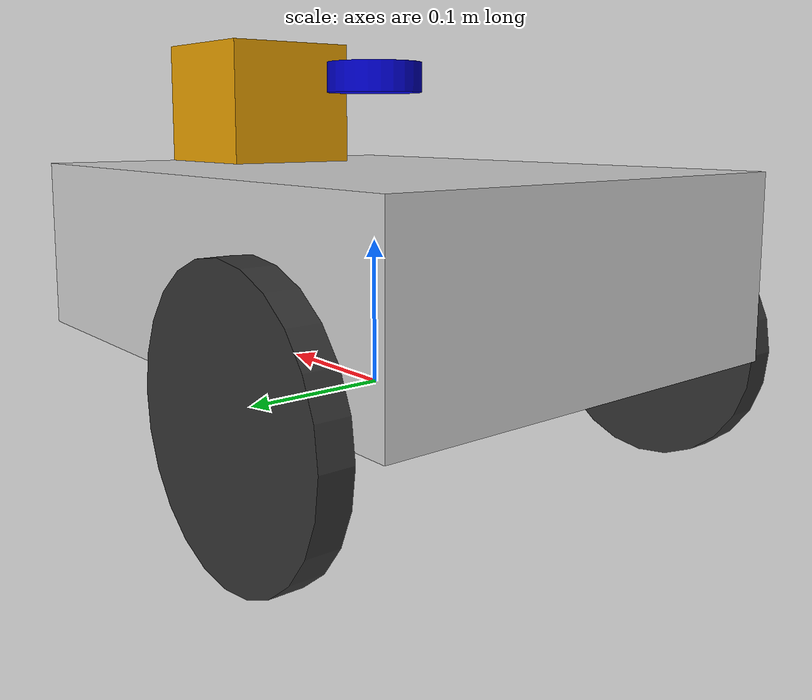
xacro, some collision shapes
<?xml version="1.0"?>
<robot xmlns:xacro="http://www.ros.org/wiki/xacro" name="rb_diff_wheel">

  <xacro:property name="base_width" value="0.3"/>
  <xacro:property name="base_len" value="0.4"/>
  <xacro:property name="base_height" value="0.12"/>
  <xacro:property name="wheel_radius" value="0.085"/>
  <xacro:property name="base_wheel_gap" value="0.02"/>
  <xacro:property name="wheel_separation" value="0.31"/>
  <xacro:property name="wheel_joint_offset" value="-0.107"/>
  <xacro:property name="caster_wheel_radius" value="0.05"/>
  <xacro:property name="caster_wheel_joint_offset" value="0.12"/>

  <!-- type proper dae file location for your robot -->
  <xacro:property name="lidar_dae_location" value="package://gcamp_gazebo/meshes/hokuyo.dae"/>

  <link name="robot_footprint"></link>
  <xacro:include filename="$(find gcamp_gazebo)/urdf/rb_diff_gazebo_plugin.xacro"/>

  <material name="blue">
    <color rgba="0 0 0.8 1"/>
  </material>
  <material name="black">
    <color rgba="0 0 0 1"/>
  </material>
  <material name="darkgray">
    <color rgba="0.2 0.2 0.2 1"/>
  </material>
  <material name="lightgray">
    <color rgba="0.8 0.8 0.8 1"/>s
  </material>
  <material name="white">
    <color rgba="1 1 1 1"/>
  </material>
  <material name="red">
    <color rgba="0.8 0.0 0.0 1.0"/>
  </material>

  <!-- Import Rviz colors -->

  <xacro:macro name="box_inertia" params="m w h d">
    <inertial>
      <mass value="${m}"/>
      <inertia ixx="${m / 12.0 * (d*d + h*h)}" ixy="0.0" ixz="0.0" iyy="${m / 12.0 * (w*w + h*h)}" iyz="0.0" izz="${m / 12.0 * (w*w + d*d)}"/>
    </inertial>
  </xacro:macro>

  <joint name="robot_footprint_joint" type="fixed">
    <origin xyz="0 0 0" rpy="0 0 0" />
    <parent link="robot_footprint"/>
    <child link="base_footprint"/>
  </joint>

  <link name="base_footprint">
    <xacro:box_inertia m="8" w="0.001" h="0.001" d="0.001"/>
    <visual>
      <origin xyz="0 0 0" rpy="0 0 0" />
      <material name="white"/>
        <geometry>
            <box size="0.001 0.001 0.001" />
        </geometry>
    </visual>
  </link>

  <link name="base_link">
    <xacro:box_inertia m="1" w="${base_len}" h="${base_width}" d="0.01"/>
    <visual>
      <material name="lightgray"/>
      <geometry>
        <box size="${base_len} ${base_width} ${base_height}"/>
      </geometry>
    </visual>
    <collision>
      <geometry>
        <box size="${base_len} ${base_width} ${base_height}"/>
      </geometry>
    </collision>
  </link>

  <joint name="base_link_joint" type="fixed">
    <origin xyz="0 0 ${wheel_radius + 0.005}" rpy="0 0 0" />
    <parent link="base_footprint"/>
    <child link="base_link" />
  </joint>

  <xacro:macro name="cylinder_inertia" params="m r h">
    <inertial>
      <mass value="${m}"/>
      <inertia ixx="${m*(3*r*r+h*h)/12}" ixy = "0" ixz = "0" iyy="${m*(3*r*r+h*h)/12}" iyz = "0" izz="${m*r*r/2}"/>
    </inertial>
  </xacro:macro>

  <xacro:macro name="wheel" params="prefix reflect">
    <link name="${prefix}_wheel">
      <visual>
	      <material name="darkgray"/>
        <origin xyz="0 0 0" rpy="${pi/2} 0 0"/>
        <geometry>
          <cylinder radius="${wheel_radius}" length="0.02"/>
        </geometry>
      </visual>
      <collision>
        <origin xyz="0 0 0" rpy="${pi/2} 0 0"/>
        <geometry>
          <cylinder radius="${wheel_radius}" length="0.02"/>
        </geometry>
      </collision>
      <xacro:cylinder_inertia m="10" r="${wheel_radius}" h="0.02"/>
    </link>

    <joint name="${prefix}_wheel" type="continuous">
      <axis xyz="0 1 0" rpy="0 0 0" />
      <parent link="base_link"/>
      <child link="${prefix}_wheel"/>
      <origin xyz="${wheel_joint_offset} ${((base_width/2)+base_wheel_gap)*reflect} -0.06" rpy="0 0 0"/>
    </joint>
  </xacro:macro>

  <xacro:wheel prefix="left" reflect="1"/>
  <xacro:wheel prefix="right" reflect="-1"/>

  <xacro:macro name="sphere_inertia" params="m r">
    <inertial>
      <mass value="${m}"/>
      <inertia ixx="${2.0*m*(r*r)/5.0}" ixy="0.0" ixz="0.0" iyy="${2.0*m*(r*r)/5.0}" iyz="0.0" izz="${2.0*m*(r*r)/5.0}"/>
    </inertial>
  </xacro:macro>

   <link name="caster_wheel">
     <visual>
      <material name="darkgray"/>
      <origin xyz="0 0 0" rpy="0 0 0"/>
      <geometry>
        <sphere radius="${caster_wheel_radius}"/>
      </geometry>
    </visual>
    <collision>
      <origin xyz="0 0 0" rpy="0 0 0"/>
      <geometry>
        <sphere radius="${caster_wheel_radius}"/>
      </geometry>
    </collision>
    <xacro:sphere_inertia m="5" r="${caster_wheel_radius}"/>
  </link>

  <joint name="caster_wheel_joint" type="continuous">
    <axis xyz="0 1 0" rpy="0 0 0" />
    <parent link="base_link"/>
    <child link="caster_wheel"/>
    <origin xyz="${caster_wheel_joint_offset} 0 -${0.045+caster_wheel_radius}" rpy="0 0 0"/>
  </joint>

  <joint name="imu_joint" type="fixed">
    <parent link="base_link" />
    <child link="imu" />
    <origin xyz="0.16 -0.065 0.035" rpy="0 0 0" />
  </joint>
  <link name="imu" />

  <joint name="lidar_joint" type="fixed">
    <parent link="base_link" />
    <child link="lidar" />
    <origin xyz="0.0 0.0 0.12" rpy="0 0 3.14159" />
  </joint>
  <link name="lidar">
    <visual>
      <material name="blue" />
      <origin xyz="0 0 0" rpy="0 0 0"/>
      <geometry>
        <cylinder radius="0.032" length="0.02"/>
      </geometry>
    </visual>
  </link>

  <joint name="hokuyo_joint" type="fixed">
    <origin xyz="0.15 0 0.1" rpy="0 0 0"/>
    <parent link="base_link"/>
    <child link="hokuyo"/>
    <axis xyz="0 1 0" rpy="0 0 0"/>
  </joint>
  <link name="hokuyo">
    <visual name='hokuyo_visual'>
      <origin xyz="0 0 0" rpy=" 0 0 0"/>
      <geometry>
        <mesh filename="${lidar_dae_location}"/>
      </geometry>
    </visual>
    <collision name='hokuyo_collision'>
      <origin xyz="0 0 0" rpy=" 0 0 0"/>
      <geometry>
        <box size="0.1 0.1 0.1"/>
      </geometry>
    </collision>
    <inertial>
      <mass value="1e-5"/>
      <origin xyz="0 0 0" rpy=" 0 0 0"/>
      <inertia
          ixx="1e-6" ixy="0" ixz="0"
          iyy="1e-6" iyz="0"
          izz="1e-6"
      />
    </inertial>
  </link>

  <joint name="camera_joint" type="fixed">
    <origin xyz="0.2 0 0" rpy="0 0 0"/>
    <parent link="base_link"/>
    <child link="camera"/>
    <axis xyz="0 1 0" rpy="0 0 0"/>
  </joint>
  <link name="camera">
    <visual name='camera_visual'>
      <origin xyz="0 0 0" rpy=" 0 0 0"/>
      <geometry>
        <box size="0.05 0.05 0.05"/>
      </geometry>
    </visual>
    <collision name='camera_collision'>
      <origin xyz="0 0 0" rpy=" 0 0 0"/>
      <geometry>
        <box size="0.05 0.05 0.05"/>
      </geometry>
    </collision>
    <inertial>
      <mass value="0.1"/>
      <origin xyz="0 0 0" rpy=" 0 0 0"/>
      <inertia
          ixx="1e-6" ixy="0" ixz="0"
          iyy="1e-6" iyz="0"
          izz="1e-6"
      />
    </inertial>
  </link>

</robot>
